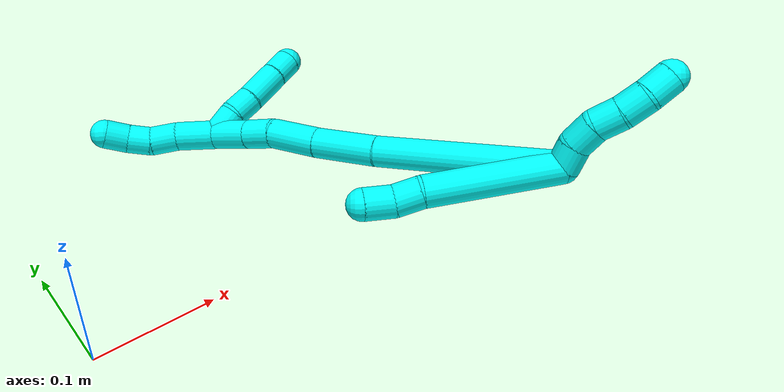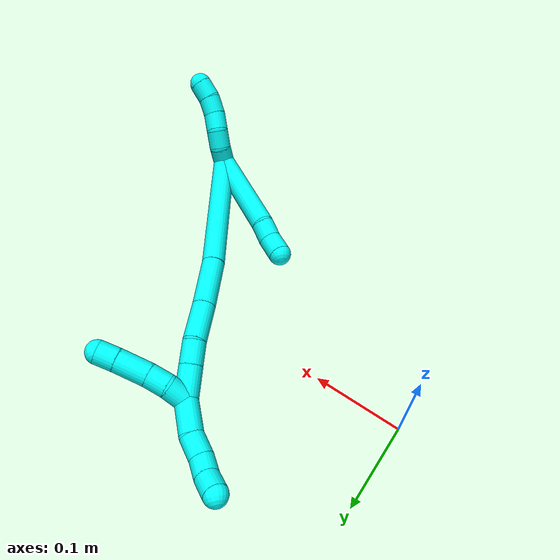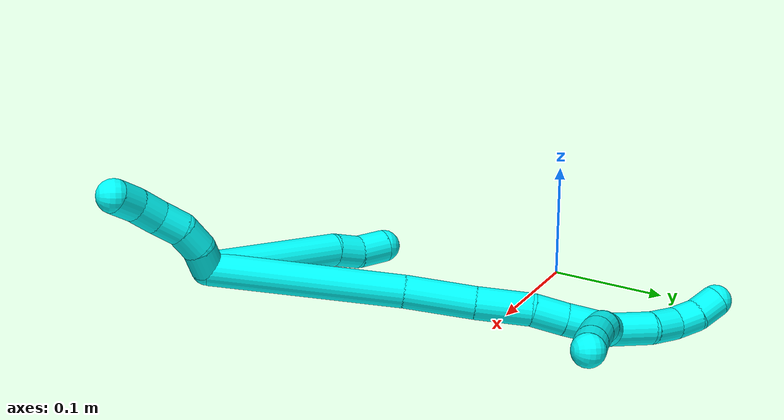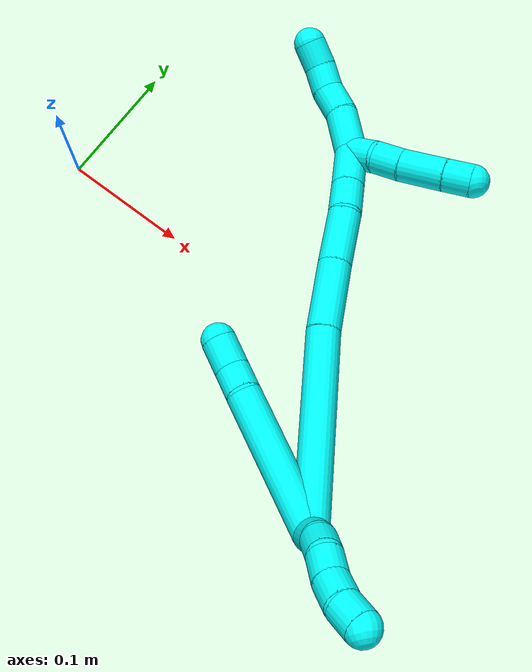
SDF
<sdf version="1.7">
 <world name="default">
  <model name="3">
   <static>0</static>
   <link name="3">
    <collision name="collision-cylinder-e_1_2_8">
     <pose>0.012668 -0.003904 -0.050912 3.06507 0.243173 2.53435</pose>
     <geometry><cylinder><radius>0.0125</radius><length>0.105219</length></cylinder></geometry>
     <surface>
      <friction><ode><mu>1.16</mu><mu2>1.16</mu2><slip1>0</slip1><slip2>0</slip2></ode></friction>
      <contact><ode><kp>1e+06</kp><kd>1</kd><max_vel>0</max_vel><min_depth>0.001</min_depth></ode></contact>
     </surface>
    </collision>
    <visual name="visual-cylinder-e_1_2_8">
     <pose>0.012668 -0.003904 -0.050912 3.06507 0.243173 2.53435</pose>
     <geometry><cylinder><radius>0.0125</radius><length>0.105219</length></cylinder></geometry>
     <material><ambient>0.003922 1 0.996078 1</ambient></material>
    </visual>
    <collision name="collision-cylinder-e_2_8_9">
     <pose>0.028045 -0.006254 -0.112009 -2.99023 0.257255 -2.08108</pose>
     <geometry><cylinder><radius>0.0125</radius><length>0.021305</length></cylinder></geometry>
     <surface>
      <friction><ode><mu>1.16</mu><mu2>1.16</mu2><slip1>0</slip1><slip2>0</slip2></ode></friction>
      <contact><ode><kp>1e+06</kp><kd>1</kd><max_vel>0</max_vel><min_depth>0.001</min_depth></ode></contact>
     </surface>
    </collision>
    <visual name="visual-cylinder-e_2_8_9">
     <pose>0.028045 -0.006254 -0.112009 -2.99023 0.257255 -2.08108</pose>
     <geometry><cylinder><radius>0.0125</radius><length>0.021305</length></cylinder></geometry>
     <material><ambient>0.003922 1 0.996078 1</ambient></material>
    </visual>
    <collision name="collision-cylinder-e_3_9_6">
     <pose>0.03329 -0.006568 -0.133501 2.97791 0.217589 1.85339</pose>
     <geometry><cylinder><radius>0.0125</radius><length>0.023476</length></cylinder></geometry>
     <surface>
      <friction><ode><mu>1.16</mu><mu2>1.16</mu2><slip1>0</slip1><slip2>0</slip2></ode></friction>
      <contact><ode><kp>1e+06</kp><kd>1</kd><max_vel>0</max_vel><min_depth>0.001</min_depth></ode></contact>
     </surface>
    </collision>
    <visual name="visual-cylinder-e_3_9_6">
     <pose>0.03329 -0.006568 -0.133501 2.97791 0.217589 1.85339</pose>
     <geometry><cylinder><radius>0.0125</radius><length>0.023476</length></cylinder></geometry>
     <material><ambient>0.003922 1 0.996078 1</ambient></material>
    </visual>
    <collision name="collision-cylinder-e_1_2_10">
     <pose>-0.003624 -0.008348 0.004144 1.10998 -0.370886 -0.231579</pose>
     <geometry><cylinder><radius>0.0125</radius><length>0.02</length></cylinder></geometry>
     <surface>
      <friction><ode><mu>1.16</mu><mu2>1.16</mu2><slip1>0</slip1><slip2>0</slip2></ode></friction>
      <contact><ode><kp>1e+06</kp><kd>1</kd><max_vel>0</max_vel><min_depth>0.001</min_depth></ode></contact>
     </surface>
    </collision>
    <visual name="visual-cylinder-e_1_2_10">
     <pose>-0.003624 -0.008348 0.004144 1.10998 -0.370886 -0.231579</pose>
     <geometry><cylinder><radius>0.0125</radius><length>0.02</length></cylinder></geometry>
     <material><ambient>0.003922 1 0.996078 1</ambient></material>
    </visual>
    <collision name="collision-cylinder-e_2_10_11">
     <pose>-0.009418 -0.023864 0.014915 0.82466 -0.218611 -0.09593</pose>
     <geometry><cylinder><radius>0.0125</radius><length>0.02</length></cylinder></geometry>
     <surface>
      <friction><ode><mu>1.16</mu><mu2>1.16</mu2><slip1>0</slip1><slip2>0</slip2></ode></friction>
      <contact><ode><kp>1e+06</kp><kd>1</kd><max_vel>0</max_vel><min_depth>0.001</min_depth></ode></contact>
     </surface>
    </collision>
    <visual name="visual-cylinder-e_2_10_11">
     <pose>-0.009418 -0.023864 0.014915 0.82466 -0.218611 -0.09593</pose>
     <geometry><cylinder><radius>0.0125</radius><length>0.02</length></cylinder></geometry>
     <material><ambient>0.003922 1 0.996078 1</ambient></material>
    </visual>
    <collision name="collision-cylinder-e_3_11_12">
     <pose>-0.012768 -0.035715 0.030298 0.491063 -0.118441 -0.029712</pose>
     <geometry><cylinder><radius>0.0125</radius><length>0.02</length></cylinder></geometry>
     <surface>
      <friction><ode><mu>1.16</mu><mu2>1.16</mu2><slip1>0</slip1><slip2>0</slip2></ode></friction>
      <contact><ode><kp>1e+06</kp><kd>1</kd><max_vel>0</max_vel><min_depth>0.001</min_depth></ode></contact>
     </surface>
    </collision>
    <visual name="visual-cylinder-e_3_11_12">
     <pose>-0.012768 -0.035715 0.030298 0.491063 -0.118441 -0.029712</pose>
     <geometry><cylinder><radius>0.0125</radius><length>0.02</length></cylinder></geometry>
     <material><ambient>0.003922 1 0.996078 1</ambient></material>
    </visual>
    <collision name="collision-cylinder-e_4_12_13">
     <pose>-0.016825 -0.045334 0.047263 0.541463 -0.291614 -0.08147</pose>
     <geometry><cylinder><radius>0.0125</radius><length>0.02</length></cylinder></geometry>
     <surface>
      <friction><ode><mu>1.16</mu><mu2>1.16</mu2><slip1>0</slip1><slip2>0</slip2></ode></friction>
      <contact><ode><kp>1e+06</kp><kd>1</kd><max_vel>0</max_vel><min_depth>0.001</min_depth></ode></contact>
     </surface>
    </collision>
    <visual name="visual-cylinder-e_4_12_13">
     <pose>-0.016825 -0.045334 0.047263 0.541463 -0.291614 -0.08147</pose>
     <geometry><cylinder><radius>0.0125</radius><length>0.02</length></cylinder></geometry>
     <material><ambient>0.003922 1 0.996078 1</ambient></material>
    </visual>
    <collision name="collision-cylinder-e_5_13_5">
     <pose>-0.024532 -0.05398 0.063401 0.437493 -0.504404 -0.114445</pose>
     <geometry><cylinder><radius>0.0125</radius><length>0.02</length></cylinder></geometry>
     <surface>
      <friction><ode><mu>1.16</mu><mu2>1.16</mu2><slip1>0</slip1><slip2>0</slip2></ode></friction>
      <contact><ode><kp>1e+06</kp><kd>1</kd><max_vel>0</max_vel><min_depth>0.001</min_depth></ode></contact>
     </surface>
    </collision>
    <visual name="visual-cylinder-e_5_13_5">
     <pose>-0.024532 -0.05398 0.063401 0.437493 -0.504404 -0.114445</pose>
     <geometry><cylinder><radius>0.0125</radius><length>0.02</length></cylinder></geometry>
     <material><ambient>0.003922 1 0.996078 1</ambient></material>
    </visual>
    <collision name="collision-cylinder-e_1_2_14">
     <pose>-0.017391 0.006898 -0.069676 -3.04291 -0.243461 2.3743</pose>
     <geometry><cylinder><radius>0.0125</radius><length>0.144289</length></cylinder></geometry>
     <surface>
      <friction><ode><mu>1.16</mu><mu2>1.16</mu2><slip1>0</slip1><slip2>0</slip2></ode></friction>
      <contact><ode><kp>1e+06</kp><kd>1</kd><max_vel>0</max_vel><min_depth>0.001</min_depth></ode></contact>
     </surface>
    </collision>
    <visual name="visual-cylinder-e_1_2_14">
     <pose>-0.017391 0.006898 -0.069676 -3.04291 -0.243461 2.3743</pose>
     <geometry><cylinder><radius>0.0125</radius><length>0.144289</length></cylinder></geometry>
     <material><ambient>0.003922 1 0.996078 1</ambient></material>
    </visual>
    <collision name="collision-cylinder-e_2_14_15">
     <pose>-0.043599 0.017056 -0.164522 -3.01279 -0.334349 2.4115</pose>
     <geometry><cylinder><radius>0.0125</radius><length>0.053736</length></cylinder></geometry>
     <surface>
      <friction><ode><mu>1.16</mu><mu2>1.16</mu2><slip1>0</slip1><slip2>0</slip2></ode></friction>
      <contact><ode><kp>1e+06</kp><kd>1</kd><max_vel>0</max_vel><min_depth>0.001</min_depth></ode></contact>
     </surface>
    </collision>
    <visual name="visual-cylinder-e_2_14_15">
     <pose>-0.043599 0.017056 -0.164522 -3.01279 -0.334349 2.4115</pose>
     <geometry><cylinder><radius>0.0125</radius><length>0.053736</length></cylinder></geometry>
     <material><ambient>0.003922 1 0.996078 1</ambient></material>
    </visual>
    <collision name="collision-cylinder-e_3_15_16">
     <pose>-0.060199 0.021859 -0.209357 -3.06332 -0.375817 2.73542</pose>
     <geometry><cylinder><radius>0.0125</radius><length>0.042411</length></cylinder></geometry>
     <surface>
      <friction><ode><mu>1.16</mu><mu2>1.16</mu2><slip1>0</slip1><slip2>0</slip2></ode></friction>
      <contact><ode><kp>1e+06</kp><kd>1</kd><max_vel>0</max_vel><min_depth>0.001</min_depth></ode></contact>
     </surface>
    </collision>
    <visual name="visual-cylinder-e_3_15_16">
     <pose>-0.060199 0.021859 -0.209357 -3.06332 -0.375817 2.73542</pose>
     <geometry><cylinder><radius>0.0125</radius><length>0.042411</length></cylinder></geometry>
     <material><ambient>0.003922 1 0.996078 1</ambient></material>
    </visual>
    <collision name="collision-cylinder-e_4_16_17">
     <pose>-0.071099 0.026695 -0.241037 -2.87402 -0.245158 1.48244</pose>
     <geometry><cylinder><radius>0.0125</radius><length>0.025685</length></cylinder></geometry>
     <surface>
      <friction><ode><mu>1.16</mu><mu2>1.16</mu2><slip1>0</slip1><slip2>0</slip2></ode></friction>
      <contact><ode><kp>1e+06</kp><kd>1</kd><max_vel>0</max_vel><min_depth>0.001</min_depth></ode></contact>
     </surface>
    </collision>
    <visual name="visual-cylinder-e_4_16_17">
     <pose>-0.071099 0.026695 -0.241037 -2.87402 -0.245158 1.48244</pose>
     <geometry><cylinder><radius>0.0125</radius><length>0.025685</length></cylinder></geometry>
     <material><ambient>0.003922 1 0.996078 1</ambient></material>
    </visual>
    <collision name="collision-cylinder-e_5_17_1">
     <pose>-0.078343 0.033672 -0.269064 -2.91553 -0.246077 1.65633</pose>
     <geometry><cylinder><radius>0.0125</radius><length>0.033879</length></cylinder></geometry>
     <surface>
      <friction><ode><mu>1.16</mu><mu2>1.16</mu2><slip1>0</slip1><slip2>0</slip2></ode></friction>
      <contact><ode><kp>1e+06</kp><kd>1</kd><max_vel>0</max_vel><min_depth>0.001</min_depth></ode></contact>
     </surface>
    </collision>
    <visual name="visual-cylinder-e_5_17_1">
     <pose>-0.078343 0.033672 -0.269064 -2.91553 -0.246077 1.65633</pose>
     <geometry><cylinder><radius>0.0125</radius><length>0.033879</length></cylinder></geometry>
     <material><ambient>0.003922 1 0.996078 1</ambient></material>
    </visual>
    <collision name="collision-cylinder-e_1_1_18">
     <pose>-0.082458 0.037372 -0.302883 -3.14057 0.000633 -1.1063</pose>
     <geometry><cylinder><radius>0.0125</radius><length>0.035614</length></cylinder></geometry>
     <surface>
      <friction><ode><mu>1.16</mu><mu2>1.16</mu2><slip1>0</slip1><slip2>0</slip2></ode></friction>
      <contact><ode><kp>1e+06</kp><kd>1</kd><max_vel>0</max_vel><min_depth>0.001</min_depth></ode></contact>
     </surface>
    </collision>
    <visual name="visual-cylinder-e_1_1_18">
     <pose>-0.082458 0.037372 -0.302883 -3.14057 0.000633 -1.1063</pose>
     <geometry><cylinder><radius>0.0125</radius><length>0.035614</length></cylinder></geometry>
     <material><ambient>0.003922 1 0.996078 1</ambient></material>
    </visual>
    <collision name="collision-cylinder-e_2_18_19">
     <pose>-0.079429 0.036682 -0.332138 3.07977 0.257325 2.67237</pose>
     <geometry><cylinder><radius>0.0125</radius><length>0.023721</length></cylinder></geometry>
     <surface>
      <friction><ode><mu>1.16</mu><mu2>1.16</mu2><slip1>0</slip1><slip2>0</slip2></ode></friction>
      <contact><ode><kp>1e+06</kp><kd>1</kd><max_vel>0</max_vel><min_depth>0.001</min_depth></ode></contact>
     </surface>
    </collision>
    <visual name="visual-cylinder-e_2_18_19">
     <pose>-0.079429 0.036682 -0.332138 3.07977 0.257325 2.67237</pose>
     <geometry><cylinder><radius>0.0125</radius><length>0.023721</length></cylinder></geometry>
     <material><ambient>0.003922 1 0.996078 1</ambient></material>
    </visual>
    <collision name="collision-cylinder-e_3_19_20">
     <pose>-0.075915 0.033146 -0.353255 2.85717 0.049077 0.339538</pose>
     <geometry><cylinder><radius>0.0125</radius><length>0.020174</length></cylinder></geometry>
     <surface>
      <friction><ode><mu>1.16</mu><mu2>1.16</mu2><slip1>0</slip1><slip2>0</slip2></ode></friction>
      <contact><ode><kp>1e+06</kp><kd>1</kd><max_vel>0</max_vel><min_depth>0.001</min_depth></ode></contact>
     </surface>
    </collision>
    <visual name="visual-cylinder-e_3_19_20">
     <pose>-0.075915 0.033146 -0.353255 2.85717 0.049077 0.339538</pose>
     <geometry><cylinder><radius>0.0125</radius><length>0.020174</length></cylinder></geometry>
     <material><ambient>0.003922 1 0.996078 1</ambient></material>
    </visual>
    <collision name="collision-cylinder-e_4_20_4">
     <pose>-0.07406 0.02522 -0.371707 2.61551 0.133145 0.48542</pose>
     <geometry><cylinder><radius>0.0125</radius><length>0.020491</length></cylinder></geometry>
     <surface>
      <friction><ode><mu>1.16</mu><mu2>1.16</mu2><slip1>0</slip1><slip2>0</slip2></ode></friction>
      <contact><ode><kp>1e+06</kp><kd>1</kd><max_vel>0</max_vel><min_depth>0.001</min_depth></ode></contact>
     </surface>
    </collision>
    <visual name="visual-cylinder-e_4_20_4">
     <pose>-0.07406 0.02522 -0.371707 2.61551 0.133145 0.48542</pose>
     <geometry><cylinder><radius>0.0125</radius><length>0.020491</length></cylinder></geometry>
     <material><ambient>0.003922 1 0.996078 1</ambient></material>
    </visual>
    <collision name="collision-cylinder-e_1_1_21">
     <pose>-0.091341 0.034097 -0.27834 0.450454 -0.870222 -0.212195</pose>
     <geometry><cylinder><radius>0.0125</radius><length>0.02321</length></cylinder></geometry>
     <surface>
      <friction><ode><mu>1.16</mu><mu2>1.16</mu2><slip1>0</slip1><slip2>0</slip2></ode></friction>
      <contact><ode><kp>1e+06</kp><kd>1</kd><max_vel>0</max_vel><min_depth>0.001</min_depth></ode></contact>
     </surface>
    </collision>
    <visual name="visual-cylinder-e_1_1_21">
     <pose>-0.091341 0.034097 -0.27834 0.450454 -0.870222 -0.212195</pose>
     <geometry><cylinder><radius>0.0125</radius><length>0.02321</length></cylinder></geometry>
     <material><ambient>0.003922 1 0.996078 1</ambient></material>
    </visual>
    <collision name="collision-cylinder-e_2_21_22">
     <pose>-0.108866 0.030656 -0.265071 0.028121 -0.923799 -0.014</pose>
     <geometry><cylinder><radius>0.0125</radius><length>0.021689</length></cylinder></geometry>
     <surface>
      <friction><ode><mu>1.16</mu><mu2>1.16</mu2><slip1>0</slip1><slip2>0</slip2></ode></friction>
      <contact><ode><kp>1e+06</kp><kd>1</kd><max_vel>0</max_vel><min_depth>0.001</min_depth></ode></contact>
     </surface>
    </collision>
    <visual name="visual-cylinder-e_2_21_22">
     <pose>-0.108866 0.030656 -0.265071 0.028121 -0.923799 -0.014</pose>
     <geometry><cylinder><radius>0.0125</radius><length>0.021689</length></cylinder></geometry>
     <material><ambient>0.003922 1 0.996078 1</ambient></material>
    </visual>
    <collision name="collision-cylinder-e_3_22_23">
     <pose>-0.132016 0.030362 -0.249432 0.012064 -1.01001 -0.006669</pose>
     <geometry><cylinder><radius>0.0125</radius><length>0.034239</length></cylinder></geometry>
     <surface>
      <friction><ode><mu>1.16</mu><mu2>1.16</mu2><slip1>0</slip1><slip2>0</slip2></ode></friction>
      <contact><ode><kp>1e+06</kp><kd>1</kd><max_vel>0</max_vel><min_depth>0.001</min_depth></ode></contact>
     </surface>
    </collision>
    <visual name="visual-cylinder-e_3_22_23">
     <pose>-0.132016 0.030362 -0.249432 0.012064 -1.01001 -0.006669</pose>
     <geometry><cylinder><radius>0.0125</radius><length>0.034239</length></cylinder></geometry>
     <material><ambient>0.003922 1 0.996078 1</ambient></material>
    </visual>
    <collision name="collision-cylinder-e_4_23_3">
     <pose>-0.155494 0.030566 -0.23503 -0.059114 -1.03707 0.033738</pose>
     <geometry><cylinder><radius>0.0125</radius><length>0.020862</length></cylinder></geometry>
     <surface>
      <friction><ode><mu>1.16</mu><mu2>1.16</mu2><slip1>0</slip1><slip2>0</slip2></ode></friction>
      <contact><ode><kp>1e+06</kp><kd>1</kd><max_vel>0</max_vel><min_depth>0.001</min_depth></ode></contact>
     </surface>
    </collision>
    <visual name="visual-cylinder-e_4_23_3">
     <pose>-0.155494 0.030566 -0.23503 -0.059114 -1.03707 0.033738</pose>
     <geometry><cylinder><radius>0.0125</radius><length>0.020862</length></cylinder></geometry>
     <material><ambient>0.003922 1 0.996078 1</ambient></material>
    </visual>
    <collision name="collision-sphere-3">
     <pose>-0.164474 0.030879 -0.229733 0 -0 0</pose>
     <geometry><sphere><radius>0.0125</radius></sphere></geometry>
     <surface>
      <friction><ode><mu>1.16</mu><mu2>1.16</mu2><slip1>0</slip1><slip2>0</slip2></ode></friction>
      <contact><ode><kp>1e+06</kp><kd>1</kd><max_vel>0</max_vel><min_depth>0.001</min_depth></ode></contact>
     </surface>
    </collision>
    <visual name="visual-sphere-3">
     <pose>-0.164474 0.030879 -0.229733 0 -0 0</pose>
     <geometry><sphere><radius>0.0125</radius></sphere></geometry>
     <material><ambient>0.003922 1 0.996078 1</ambient></material>
    </visual>
    <collision name="collision-sphere-23">
     <pose>-0.146514 0.030252 -0.240328 0 -0 0</pose>
     <geometry><sphere><radius>0.0125</radius></sphere></geometry>
     <surface>
      <friction><ode><mu>1.16</mu><mu2>1.16</mu2><slip1>0</slip1><slip2>0</slip2></ode></friction>
      <contact><ode><kp>1e+06</kp><kd>1</kd><max_vel>0</max_vel><min_depth>0.001</min_depth></ode></contact>
     </surface>
    </collision>
    <visual name="visual-sphere-23">
     <pose>-0.146514 0.030252 -0.240328 0 -0 0</pose>
     <geometry><sphere><radius>0.0125</radius></sphere></geometry>
     <material><ambient>0.003922 1 0.996078 1</ambient></material>
    </visual>
    <collision name="collision-sphere-22">
     <pose>-0.117519 0.030472 -0.258536 0 -0 0</pose>
     <geometry><sphere><radius>0.0125</radius></sphere></geometry>
     <surface>
      <friction><ode><mu>1.16</mu><mu2>1.16</mu2><slip1>0</slip1><slip2>0</slip2></ode></friction>
      <contact><ode><kp>1e+06</kp><kd>1</kd><max_vel>0</max_vel><min_depth>0.001</min_depth></ode></contact>
     </surface>
    </collision>
    <visual name="visual-sphere-22">
     <pose>-0.117519 0.030472 -0.258536 0 -0 0</pose>
     <geometry><sphere><radius>0.0125</radius></sphere></geometry>
     <material><ambient>0.003922 1 0.996078 1</ambient></material>
    </visual>
    <collision name="collision-sphere-21">
     <pose>-0.100213 0.03084 -0.271605 0 -0 0</pose>
     <geometry><sphere><radius>0.0125</radius></sphere></geometry>
     <surface>
      <friction><ode><mu>1.16</mu><mu2>1.16</mu2><slip1>0</slip1><slip2>0</slip2></ode></friction>
      <contact><ode><kp>1e+06</kp><kd>1</kd><max_vel>0</max_vel><min_depth>0.001</min_depth></ode></contact>
     </surface>
    </collision>
    <visual name="visual-sphere-21">
     <pose>-0.100213 0.03084 -0.271605 0 -0 0</pose>
     <geometry><sphere><radius>0.0125</radius></sphere></geometry>
     <material><ambient>0.003922 1 0.996078 1</ambient></material>
    </visual>
    <collision name="collision-sphere-4">
     <pose>-0.0727 0.020121 -0.380489 0 -0 0</pose>
     <geometry><sphere><radius>0.0125</radius></sphere></geometry>
     <surface>
      <friction><ode><mu>1.16</mu><mu2>1.16</mu2><slip1>0</slip1><slip2>0</slip2></ode></friction>
      <contact><ode><kp>1e+06</kp><kd>1</kd><max_vel>0</max_vel><min_depth>0.001</min_depth></ode></contact>
     </surface>
    </collision>
    <visual name="visual-sphere-4">
     <pose>-0.0727 0.020121 -0.380489 0 -0 0</pose>
     <geometry><sphere><radius>0.0125</radius></sphere></geometry>
     <material><ambient>0.003922 1 0.996078 1</ambient></material>
    </visual>
    <collision name="collision-sphere-20">
     <pose>-0.075421 0.030319 -0.362925 0 -0 0</pose>
     <geometry><sphere><radius>0.0125</radius></sphere></geometry>
     <surface>
      <friction><ode><mu>1.16</mu><mu2>1.16</mu2><slip1>0</slip1><slip2>0</slip2></ode></friction>
      <contact><ode><kp>1e+06</kp><kd>1</kd><max_vel>0</max_vel><min_depth>0.001</min_depth></ode></contact>
     </surface>
    </collision>
    <visual name="visual-sphere-20">
     <pose>-0.075421 0.030319 -0.362925 0 -0 0</pose>
     <geometry><sphere><radius>0.0125</radius></sphere></geometry>
     <material><ambient>0.003922 1 0.996078 1</ambient></material>
    </visual>
    <collision name="collision-sphere-11">
     <pose>-0.011586 -0.031033 0.021542 0 -0 0</pose>
     <geometry><sphere><radius>0.0125</radius></sphere></geometry>
     <surface>
      <friction><ode><mu>1.16</mu><mu2>1.16</mu2><slip1>0</slip1><slip2>0</slip2></ode></friction>
      <contact><ode><kp>1e+06</kp><kd>1</kd><max_vel>0</max_vel><min_depth>0.001</min_depth></ode></contact>
     </surface>
    </collision>
    <visual name="visual-sphere-11">
     <pose>-0.011586 -0.031033 0.021542 0 -0 0</pose>
     <geometry><sphere><radius>0.0125</radius></sphere></geometry>
     <material><ambient>0.003922 1 0.996078 1</ambient></material>
    </visual>
    <collision name="collision-sphere-10">
     <pose>-0.007249 -0.016696 0.008289 0 -0 0</pose>
     <geometry><sphere><radius>0.0125</radius></sphere></geometry>
     <surface>
      <friction><ode><mu>1.16</mu><mu2>1.16</mu2><slip1>0</slip1><slip2>0</slip2></ode></friction>
      <contact><ode><kp>1e+06</kp><kd>1</kd><max_vel>0</max_vel><min_depth>0.001</min_depth></ode></contact>
     </surface>
    </collision>
    <visual name="visual-sphere-10">
     <pose>-0.007249 -0.016696 0.008289 0 -0 0</pose>
     <geometry><sphere><radius>0.0125</radius></sphere></geometry>
     <material><ambient>0.003922 1 0.996078 1</ambient></material>
    </visual>
    <collision name="collision-sphere-6">
     <pose>0.035823 -0.008436 -0.144809 0 -0 0</pose>
     <geometry><sphere><radius>0.0125</radius></sphere></geometry>
     <surface>
      <friction><ode><mu>1.16</mu><mu2>1.16</mu2><slip1>0</slip1><slip2>0</slip2></ode></friction>
      <contact><ode><kp>1e+06</kp><kd>1</kd><max_vel>0</max_vel><min_depth>0.001</min_depth></ode></contact>
     </surface>
    </collision>
    <visual name="visual-sphere-6">
     <pose>0.035823 -0.008436 -0.144809 0 -0 0</pose>
     <geometry><sphere><radius>0.0125</radius></sphere></geometry>
     <material><ambient>0.003922 1 0.996078 1</ambient></material>
    </visual>
    <collision name="collision-sphere-9">
     <pose>0.030756 -0.004701 -0.122193 0 -0 0</pose>
     <geometry><sphere><radius>0.0125</radius></sphere></geometry>
     <surface>
      <friction><ode><mu>1.16</mu><mu2>1.16</mu2><slip1>0</slip1><slip2>0</slip2></ode></friction>
      <contact><ode><kp>1e+06</kp><kd>1</kd><max_vel>0</max_vel><min_depth>0.001</min_depth></ode></contact>
     </surface>
    </collision>
    <visual name="visual-sphere-9">
     <pose>0.030756 -0.004701 -0.122193 0 -0 0</pose>
     <geometry><sphere><radius>0.0125</radius></sphere></geometry>
     <material><ambient>0.003922 1 0.996078 1</ambient></material>
    </visual>
    <collision name="collision-sphere-2">
     <geometry><sphere><radius>0.0125</radius></sphere></geometry>
     <surface>
      <friction><ode><mu>1.16</mu><mu2>1.16</mu2><slip1>0</slip1><slip2>0</slip2></ode></friction>
      <contact><ode><kp>1e+06</kp><kd>1</kd><max_vel>0</max_vel><min_depth>0.001</min_depth></ode></contact>
     </surface>
    </collision>
    <visual name="visual-sphere-2">
     <geometry><sphere><radius>0.0125</radius></sphere></geometry>
     <material><ambient>0.003922 1 0.996078 1</ambient></material>
    </visual>
    <collision name="collision-sphere-19">
     <pose>-0.07641 0.035973 -0.343586 0 -0 0</pose>
     <geometry><sphere><radius>0.0125</radius></sphere></geometry>
     <surface>
      <friction><ode><mu>1.16</mu><mu2>1.16</mu2><slip1>0</slip1><slip2>0</slip2></ode></friction>
      <contact><ode><kp>1e+06</kp><kd>1</kd><max_vel>0</max_vel><min_depth>0.001</min_depth></ode></contact>
     </surface>
    </collision>
    <visual name="visual-sphere-19">
     <pose>-0.07641 0.035973 -0.343586 0 -0 0</pose>
     <geometry><sphere><radius>0.0125</radius></sphere></geometry>
     <material><ambient>0.003922 1 0.996078 1</ambient></material>
    </visual>
    <collision name="collision-sphere-8">
     <pose>0.025335 -0.007808 -0.101825 0 -0 0</pose>
     <geometry><sphere><radius>0.0125</radius></sphere></geometry>
     <surface>
      <friction><ode><mu>1.16</mu><mu2>1.16</mu2><slip1>0</slip1><slip2>0</slip2></ode></friction>
      <contact><ode><kp>1e+06</kp><kd>1</kd><max_vel>0</max_vel><min_depth>0.001</min_depth></ode></contact>
     </surface>
    </collision>
    <visual name="visual-sphere-8">
     <pose>0.025335 -0.007808 -0.101825 0 -0 0</pose>
     <geometry><sphere><radius>0.0125</radius></sphere></geometry>
     <material><ambient>0.003922 1 0.996078 1</ambient></material>
    </visual>
    <collision name="collision-sphere-12">
     <pose>-0.01395 -0.040398 0.039055 0 -0 0</pose>
     <geometry><sphere><radius>0.0125</radius></sphere></geometry>
     <surface>
      <friction><ode><mu>1.16</mu><mu2>1.16</mu2><slip1>0</slip1><slip2>0</slip2></ode></friction>
      <contact><ode><kp>1e+06</kp><kd>1</kd><max_vel>0</max_vel><min_depth>0.001</min_depth></ode></contact>
     </surface>
    </collision>
    <visual name="visual-sphere-12">
     <pose>-0.01395 -0.040398 0.039055 0 -0 0</pose>
     <geometry><sphere><radius>0.0125</radius></sphere></geometry>
     <material><ambient>0.003922 1 0.996078 1</ambient></material>
    </visual>
    <collision name="collision-sphere-13">
     <pose>-0.0197 -0.05027 0.05547 0 -0 0</pose>
     <geometry><sphere><radius>0.0125</radius></sphere></geometry>
     <surface>
      <friction><ode><mu>1.16</mu><mu2>1.16</mu2><slip1>0</slip1><slip2>0</slip2></ode></friction>
      <contact><ode><kp>1e+06</kp><kd>1</kd><max_vel>0</max_vel><min_depth>0.001</min_depth></ode></contact>
     </surface>
    </collision>
    <visual name="visual-sphere-13">
     <pose>-0.0197 -0.05027 0.05547 0 -0 0</pose>
     <geometry><sphere><radius>0.0125</radius></sphere></geometry>
     <material><ambient>0.003922 1 0.996078 1</ambient></material>
    </visual>
    <collision name="collision-sphere-5">
     <pose>-0.029365 -0.057689 0.071331 0 -0 0</pose>
     <geometry><sphere><radius>0.0125</radius></sphere></geometry>
     <surface>
      <friction><ode><mu>1.16</mu><mu2>1.16</mu2><slip1>0</slip1><slip2>0</slip2></ode></friction>
      <contact><ode><kp>1e+06</kp><kd>1</kd><max_vel>0</max_vel><min_depth>0.001</min_depth></ode></contact>
     </surface>
    </collision>
    <visual name="visual-sphere-5">
     <pose>-0.029365 -0.057689 0.071331 0 -0 0</pose>
     <geometry><sphere><radius>0.0125</radius></sphere></geometry>
     <material><ambient>0.003922 1 0.996078 1</ambient></material>
    </visual>
    <collision name="collision-sphere-14">
     <pose>-0.034783 0.013796 -0.139352 0 -0 0</pose>
     <geometry><sphere><radius>0.0125</radius></sphere></geometry>
     <surface>
      <friction><ode><mu>1.16</mu><mu2>1.16</mu2><slip1>0</slip1><slip2>0</slip2></ode></friction>
      <contact><ode><kp>1e+06</kp><kd>1</kd><max_vel>0</max_vel><min_depth>0.001</min_depth></ode></contact>
     </surface>
    </collision>
    <visual name="visual-sphere-14">
     <pose>-0.034783 0.013796 -0.139352 0 -0 0</pose>
     <geometry><sphere><radius>0.0125</radius></sphere></geometry>
     <material><ambient>0.003922 1 0.996078 1</ambient></material>
    </visual>
    <collision name="collision-sphere-15">
     <pose>-0.052416 0.020316 -0.189692 0 -0 0</pose>
     <geometry><sphere><radius>0.0125</radius></sphere></geometry>
     <surface>
      <friction><ode><mu>1.16</mu><mu2>1.16</mu2><slip1>0</slip1><slip2>0</slip2></ode></friction>
      <contact><ode><kp>1e+06</kp><kd>1</kd><max_vel>0</max_vel><min_depth>0.001</min_depth></ode></contact>
     </surface>
    </collision>
    <visual name="visual-sphere-15">
     <pose>-0.052416 0.020316 -0.189692 0 -0 0</pose>
     <geometry><sphere><radius>0.0125</radius></sphere></geometry>
     <material><ambient>0.003922 1 0.996078 1</ambient></material>
    </visual>
    <collision name="collision-sphere-16">
     <pose>-0.067982 0.023401 -0.229022 0 -0 0</pose>
     <geometry><sphere><radius>0.0125</radius></sphere></geometry>
     <surface>
      <friction><ode><mu>1.16</mu><mu2>1.16</mu2><slip1>0</slip1><slip2>0</slip2></ode></friction>
      <contact><ode><kp>1e+06</kp><kd>1</kd><max_vel>0</max_vel><min_depth>0.001</min_depth></ode></contact>
     </surface>
    </collision>
    <visual name="visual-sphere-16">
     <pose>-0.067982 0.023401 -0.229022 0 -0 0</pose>
     <geometry><sphere><radius>0.0125</radius></sphere></geometry>
     <material><ambient>0.003922 1 0.996078 1</ambient></material>
    </visual>
    <collision name="collision-sphere-17">
     <pose>-0.074216 0.029989 -0.253053 0 -0 0</pose>
     <geometry><sphere><radius>0.0125</radius></sphere></geometry>
     <surface>
      <friction><ode><mu>1.16</mu><mu2>1.16</mu2><slip1>0</slip1><slip2>0</slip2></ode></friction>
      <contact><ode><kp>1e+06</kp><kd>1</kd><max_vel>0</max_vel><min_depth>0.001</min_depth></ode></contact>
     </surface>
    </collision>
    <visual name="visual-sphere-17">
     <pose>-0.074216 0.029989 -0.253053 0 -0 0</pose>
     <geometry><sphere><radius>0.0125</radius></sphere></geometry>
     <material><ambient>0.003922 1 0.996078 1</ambient></material>
    </visual>
    <collision name="collision-sphere-1">
     <pose>-0.08247 0.037354 -0.285075 0 -0 0</pose>
     <geometry><sphere><radius>0.0125</radius></sphere></geometry>
     <surface>
      <friction><ode><mu>1.16</mu><mu2>1.16</mu2><slip1>0</slip1><slip2>0</slip2></ode></friction>
      <contact><ode><kp>1e+06</kp><kd>1</kd><max_vel>0</max_vel><min_depth>0.001</min_depth></ode></contact>
     </surface>
    </collision>
    <visual name="visual-sphere-1">
     <pose>-0.08247 0.037354 -0.285075 0 -0 0</pose>
     <geometry><sphere><radius>0.0125</radius></sphere></geometry>
     <material><ambient>0.003922 1 0.996078 1</ambient></material>
    </visual>
    <collision name="collision-sphere-18">
     <pose>-0.082447 0.037391 -0.32069 0 -0 0</pose>
     <geometry><sphere><radius>0.0125</radius></sphere></geometry>
     <surface>
      <friction><ode><mu>1.16</mu><mu2>1.16</mu2><slip1>0</slip1><slip2>0</slip2></ode></friction>
      <contact><ode><kp>1e+06</kp><kd>1</kd><max_vel>0</max_vel><min_depth>0.001</min_depth></ode></contact>
     </surface>
    </collision>
    <visual name="visual-sphere-18">
     <pose>-0.082447 0.037391 -0.32069 0 -0 0</pose>
     <geometry><sphere><radius>0.0125</radius></sphere></geometry>
     <material><ambient>0.003922 1 0.996078 1</ambient></material>
    </visual>
    <inertial>
     <pose>-0.040843 0.009523 -0.146425 0 -0 0</pose>
     <mass>0.75</mass>
     <inertia><ixx>-3e-05</ixx><ixy>0</ixy><ixz>0</ixz><iyy>0.000545</iyy><iyz>0</iyz><izz>1e-05</izz></inertia>
    </inertial>
   </link>
   <pose>0.328277 -0.130507 0.105493 -1.44899 0.224507 -2.28266</pose>
  </model>
 </world>
</sdf>
